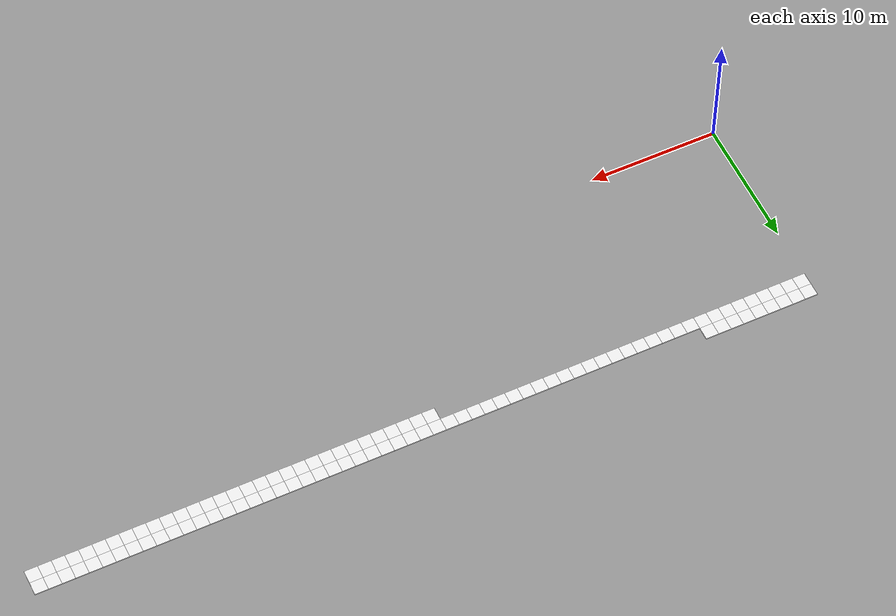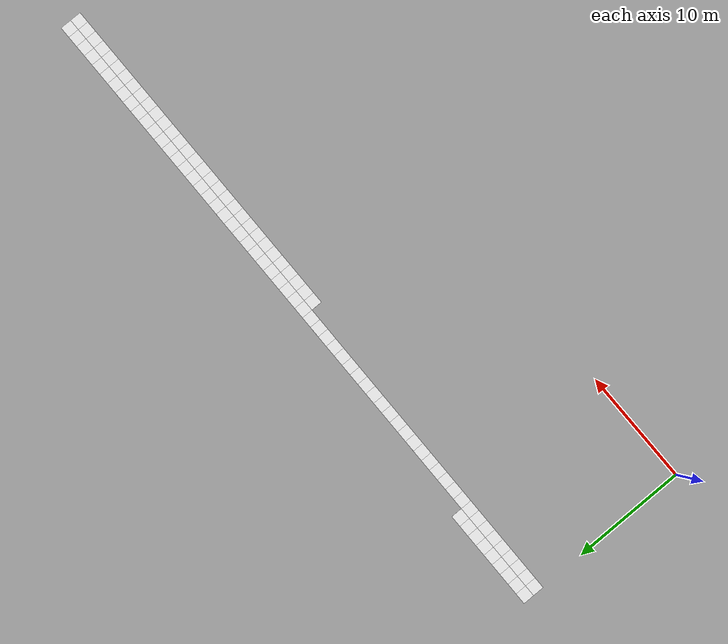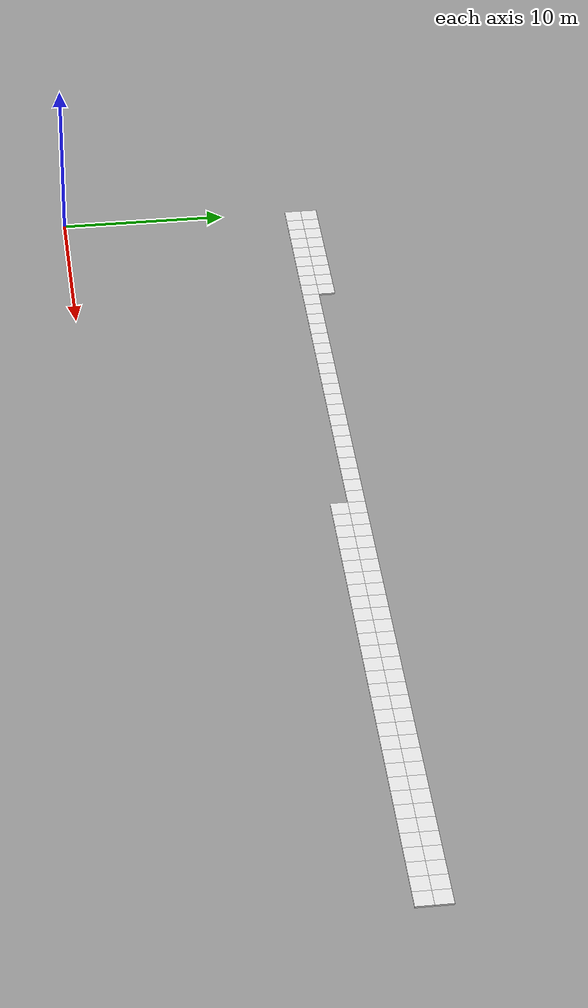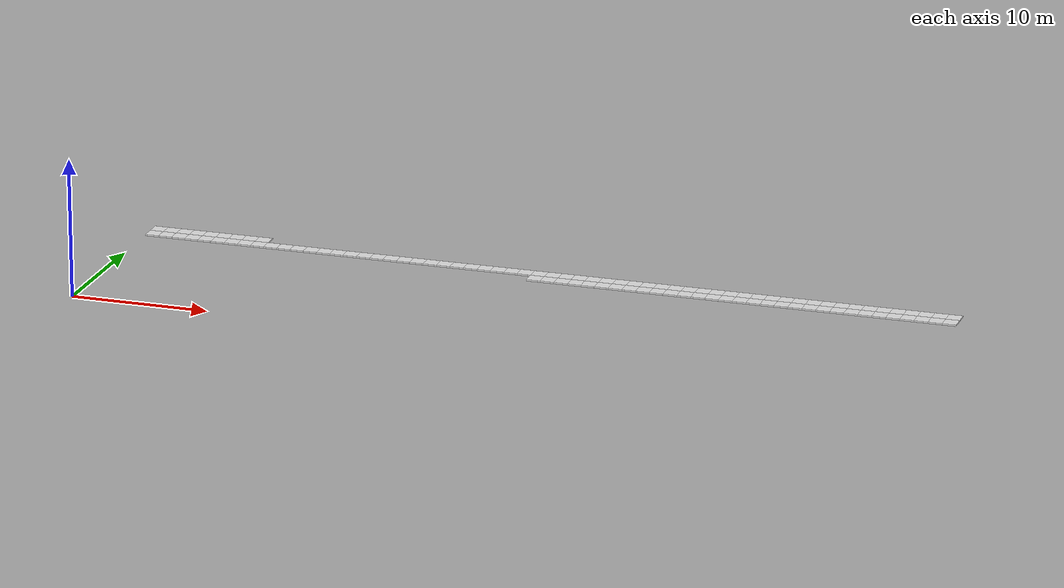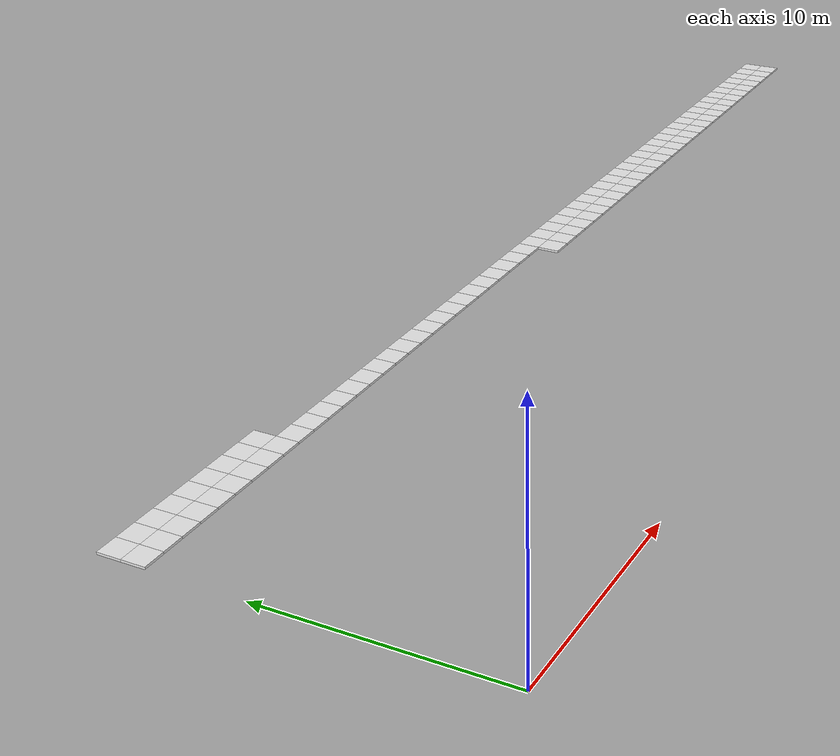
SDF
<sdf version="1.6">
 <world name="grid_world">
  <model name="cell_29_13">
   <static>true</static>
   <link name="link">
    <collision name="collision"><geometry><box><size>1 1 0.1</size></box></geometry></collision>
    <visual name="visual">
     <geometry><box><size>1 1 0.1</size></box></geometry>
     <material>
      <script><uri>file://media/materials/scripts/gazebo.material</uri><name>Gazebo/White</name></script>
     </material>
    </visual>
    <pose>29.5 13.5 0.05 0 0 0</pose>
   </link>
  </model>
  <model name="cell_30_13">
   <static>true</static>
   <link name="link">
    <collision name="collision"><geometry><box><size>1 1 0.1</size></box></geometry></collision>
    <visual name="visual">
     <geometry><box><size>1 1 0.1</size></box></geometry>
     <material>
      <script><uri>file://media/materials/scripts/gazebo.material</uri><name>Gazebo/White</name></script>
     </material>
    </visual>
    <pose>30.5 13.5 0.05 0 0 0</pose>
   </link>
  </model>
  <model name="cell_31_13">
   <static>true</static>
   <link name="link">
    <collision name="collision"><geometry><box><size>1 1 0.1</size></box></geometry></collision>
    <visual name="visual">
     <geometry><box><size>1 1 0.1</size></box></geometry>
     <material>
      <script><uri>file://media/materials/scripts/gazebo.material</uri><name>Gazebo/White</name></script>
     </material>
    </visual>
    <pose>31.5 13.5 0.05 0 0 0</pose>
   </link>
  </model>
  <model name="cell_32_13">
   <static>true</static>
   <link name="link">
    <collision name="collision"><geometry><box><size>1 1 0.1</size></box></geometry></collision>
    <visual name="visual">
     <geometry><box><size>1 1 0.1</size></box></geometry>
     <material>
      <script><uri>file://media/materials/scripts/gazebo.material</uri><name>Gazebo/White</name></script>
     </material>
    </visual>
    <pose>32.5 13.5 0.05 0 0 0</pose>
   </link>
  </model>
  <model name="cell_33_13">
   <static>true</static>
   <link name="link">
    <collision name="collision"><geometry><box><size>1 1 0.1</size></box></geometry></collision>
    <visual name="visual">
     <geometry><box><size>1 1 0.1</size></box></geometry>
     <material>
      <script><uri>file://media/materials/scripts/gazebo.material</uri><name>Gazebo/White</name></script>
     </material>
    </visual>
    <pose>33.5 13.5 0.05 0 0 0</pose>
   </link>
  </model>
  <model name="cell_34_13">
   <static>true</static>
   <link name="link">
    <collision name="collision"><geometry><box><size>1 1 0.1</size></box></geometry></collision>
    <visual name="visual">
     <geometry><box><size>1 1 0.1</size></box></geometry>
     <material>
      <script><uri>file://media/materials/scripts/gazebo.material</uri><name>Gazebo/White</name></script>
     </material>
    </visual>
    <pose>34.5 13.5 0.05 0 0 0</pose>
   </link>
  </model>
  <model name="cell_35_13">
   <static>true</static>
   <link name="link">
    <collision name="collision"><geometry><box><size>1 1 0.1</size></box></geometry></collision>
    <visual name="visual">
     <geometry><box><size>1 1 0.1</size></box></geometry>
     <material>
      <script><uri>file://media/materials/scripts/gazebo.material</uri><name>Gazebo/White</name></script>
     </material>
    </visual>
    <pose>35.5 13.5 0.05 0 0 0</pose>
   </link>
  </model>
  <model name="cell_36_13">
   <static>true</static>
   <link name="link">
    <collision name="collision"><geometry><box><size>1 1 0.1</size></box></geometry></collision>
    <visual name="visual">
     <geometry><box><size>1 1 0.1</size></box></geometry>
     <material>
      <script><uri>file://media/materials/scripts/gazebo.material</uri><name>Gazebo/White</name></script>
     </material>
    </visual>
    <pose>36.5 13.5 0.05 0 0 0</pose>
   </link>
  </model>
  <model name="cell_37_13">
   <static>true</static>
   <link name="link">
    <collision name="collision"><geometry><box><size>1 1 0.1</size></box></geometry></collision>
    <visual name="visual">
     <geometry><box><size>1 1 0.1</size></box></geometry>
     <material>
      <script><uri>file://media/materials/scripts/gazebo.material</uri><name>Gazebo/White</name></script>
     </material>
    </visual>
    <pose>37.5 13.5 0.05 0 0 0</pose>
   </link>
  </model>
  <model name="cell_38_13">
   <static>true</static>
   <link name="link">
    <collision name="collision"><geometry><box><size>1 1 0.1</size></box></geometry></collision>
    <visual name="visual">
     <geometry><box><size>1 1 0.1</size></box></geometry>
     <material>
      <script><uri>file://media/materials/scripts/gazebo.material</uri><name>Gazebo/White</name></script>
     </material>
    </visual>
    <pose>38.5 13.5 0.05 0 0 0</pose>
   </link>
  </model>
  <model name="cell_39_13">
   <static>true</static>
   <link name="link">
    <collision name="collision"><geometry><box><size>1 1 0.1</size></box></geometry></collision>
    <visual name="visual">
     <geometry><box><size>1 1 0.1</size></box></geometry>
     <material>
      <script><uri>file://media/materials/scripts/gazebo.material</uri><name>Gazebo/White</name></script>
     </material>
    </visual>
    <pose>39.5 13.5 0.05 0 0 0</pose>
   </link>
  </model>
  <model name="cell_40_13">
   <static>true</static>
   <link name="link">
    <collision name="collision"><geometry><box><size>1 1 0.1</size></box></geometry></collision>
    <visual name="visual">
     <geometry><box><size>1 1 0.1</size></box></geometry>
     <material>
      <script><uri>file://media/materials/scripts/gazebo.material</uri><name>Gazebo/White</name></script>
     </material>
    </visual>
    <pose>40.5 13.5 0.05 0 0 0</pose>
   </link>
  </model>
  <model name="cell_41_13">
   <static>true</static>
   <link name="link">
    <collision name="collision"><geometry><box><size>1 1 0.1</size></box></geometry></collision>
    <visual name="visual">
     <geometry><box><size>1 1 0.1</size></box></geometry>
     <material>
      <script><uri>file://media/materials/scripts/gazebo.material</uri><name>Gazebo/White</name></script>
     </material>
    </visual>
    <pose>41.5 13.5 0.05 0 0 0</pose>
   </link>
  </model>
  <model name="cell_42_13">
   <static>true</static>
   <link name="link">
    <collision name="collision"><geometry><box><size>1 1 0.1</size></box></geometry></collision>
    <visual name="visual">
     <geometry><box><size>1 1 0.1</size></box></geometry>
     <material>
      <script><uri>file://media/materials/scripts/gazebo.material</uri><name>Gazebo/White</name></script>
     </material>
    </visual>
    <pose>42.5 13.5 0.05 0 0 0</pose>
   </link>
  </model>
  <model name="cell_43_13">
   <static>true</static>
   <link name="link">
    <collision name="collision"><geometry><box><size>1 1 0.1</size></box></geometry></collision>
    <visual name="visual">
     <geometry><box><size>1 1 0.1</size></box></geometry>
     <material>
      <script><uri>file://media/materials/scripts/gazebo.material</uri><name>Gazebo/White</name></script>
     </material>
    </visual>
    <pose>43.5 13.5 0.05 0 0 0</pose>
   </link>
  </model>
  <model name="cell_44_13">
   <static>true</static>
   <link name="link">
    <collision name="collision"><geometry><box><size>1 1 0.1</size></box></geometry></collision>
    <visual name="visual">
     <geometry><box><size>1 1 0.1</size></box></geometry>
     <material>
      <script><uri>file://media/materials/scripts/gazebo.material</uri><name>Gazebo/White</name></script>
     </material>
    </visual>
    <pose>44.5 13.5 0.05 0 0 0</pose>
   </link>
  </model>
  <model name="cell_45_13">
   <static>true</static>
   <link name="link">
    <collision name="collision"><geometry><box><size>1 1 0.1</size></box></geometry></collision>
    <visual name="visual">
     <geometry><box><size>1 1 0.1</size></box></geometry>
     <material>
      <script><uri>file://media/materials/scripts/gazebo.material</uri><name>Gazebo/White</name></script>
     </material>
    </visual>
    <pose>45.5 13.5 0.05 0 0 0</pose>
   </link>
  </model>
  <model name="cell_46_13">
   <static>true</static>
   <link name="link">
    <collision name="collision"><geometry><box><size>1 1 0.1</size></box></geometry></collision>
    <visual name="visual">
     <geometry><box><size>1 1 0.1</size></box></geometry>
     <material>
      <script><uri>file://media/materials/scripts/gazebo.material</uri><name>Gazebo/White</name></script>
     </material>
    </visual>
    <pose>46.5 13.5 0.05 0 0 0</pose>
   </link>
  </model>
  <model name="cell_47_13">
   <static>true</static>
   <link name="link">
    <collision name="collision"><geometry><box><size>1 1 0.1</size></box></geometry></collision>
    <visual name="visual">
     <geometry><box><size>1 1 0.1</size></box></geometry>
     <material>
      <script><uri>file://media/materials/scripts/gazebo.material</uri><name>Gazebo/White</name></script>
     </material>
    </visual>
    <pose>47.5 13.5 0.05 0 0 0</pose>
   </link>
  </model>
  <model name="cell_48_13">
   <static>true</static>
   <link name="link">
    <collision name="collision"><geometry><box><size>1 1 0.1</size></box></geometry></collision>
    <visual name="visual">
     <geometry><box><size>1 1 0.1</size></box></geometry>
     <material>
      <script><uri>file://media/materials/scripts/gazebo.material</uri><name>Gazebo/White</name></script>
     </material>
    </visual>
    <pose>48.5 13.5 0.05 0 0 0</pose>
   </link>
  </model>
  <model name="cell_49_13">
   <static>true</static>
   <link name="link">
    <collision name="collision"><geometry><box><size>1 1 0.1</size></box></geometry></collision>
    <visual name="visual">
     <geometry><box><size>1 1 0.1</size></box></geometry>
     <material>
      <script><uri>file://media/materials/scripts/gazebo.material</uri><name>Gazebo/White</name></script>
     </material>
    </visual>
    <pose>49.5 13.5 0.05 0 0 0</pose>
   </link>
  </model>
  <model name="cell_50_13">
   <static>true</static>
   <link name="link">
    <collision name="collision"><geometry><box><size>1 1 0.1</size></box></geometry></collision>
    <visual name="visual">
     <geometry><box><size>1 1 0.1</size></box></geometry>
     <material>
      <script><uri>file://media/materials/scripts/gazebo.material</uri><name>Gazebo/White</name></script>
     </material>
    </visual>
    <pose>50.5 13.5 0.05 0 0 0</pose>
   </link>
  </model>
  <model name="cell_51_13">
   <static>true</static>
   <link name="link">
    <collision name="collision"><geometry><box><size>1 1 0.1</size></box></geometry></collision>
    <visual name="visual">
     <geometry><box><size>1 1 0.1</size></box></geometry>
     <material>
      <script><uri>file://media/materials/scripts/gazebo.material</uri><name>Gazebo/White</name></script>
     </material>
    </visual>
    <pose>51.5 13.5 0.05 0 0 0</pose>
   </link>
  </model>
  <model name="cell_52_13">
   <static>true</static>
   <link name="link">
    <collision name="collision"><geometry><box><size>1 1 0.1</size></box></geometry></collision>
    <visual name="visual">
     <geometry><box><size>1 1 0.1</size></box></geometry>
     <material>
      <script><uri>file://media/materials/scripts/gazebo.material</uri><name>Gazebo/White</name></script>
     </material>
    </visual>
    <pose>52.5 13.5 0.05 0 0 0</pose>
   </link>
  </model>
  <model name="cell_53_13">
   <static>true</static>
   <link name="link">
    <collision name="collision"><geometry><box><size>1 1 0.1</size></box></geometry></collision>
    <visual name="visual">
     <geometry><box><size>1 1 0.1</size></box></geometry>
     <material>
      <script><uri>file://media/materials/scripts/gazebo.material</uri><name>Gazebo/White</name></script>
     </material>
    </visual>
    <pose>53.5 13.5 0.05 0 0 0</pose>
   </link>
  </model>
  <model name="cell_54_13">
   <static>true</static>
   <link name="link">
    <collision name="collision"><geometry><box><size>1 1 0.1</size></box></geometry></collision>
    <visual name="visual">
     <geometry><box><size>1 1 0.1</size></box></geometry>
     <material>
      <script><uri>file://media/materials/scripts/gazebo.material</uri><name>Gazebo/White</name></script>
     </material>
    </visual>
    <pose>54.5 13.5 0.05 0 0 0</pose>
   </link>
  </model>
  <model name="cell_55_13">
   <static>true</static>
   <link name="link">
    <collision name="collision"><geometry><box><size>1 1 0.1</size></box></geometry></collision>
    <visual name="visual">
     <geometry><box><size>1 1 0.1</size></box></geometry>
     <material>
      <script><uri>file://media/materials/scripts/gazebo.material</uri><name>Gazebo/White</name></script>
     </material>
    </visual>
    <pose>55.5 13.5 0.05 0 0 0</pose>
   </link>
  </model>
  <model name="cell_56_13">
   <static>true</static>
   <link name="link">
    <collision name="collision"><geometry><box><size>1 1 0.1</size></box></geometry></collision>
    <visual name="visual">
     <geometry><box><size>1 1 0.1</size></box></geometry>
     <material>
      <script><uri>file://media/materials/scripts/gazebo.material</uri><name>Gazebo/White</name></script>
     </material>
    </visual>
    <pose>56.5 13.5 0.05 0 0 0</pose>
   </link>
  </model>
  <model name="cell_57_13">
   <static>true</static>
   <link name="link">
    <collision name="collision"><geometry><box><size>1 1 0.1</size></box></geometry></collision>
    <visual name="visual">
     <geometry><box><size>1 1 0.1</size></box></geometry>
     <material>
      <script><uri>file://media/materials/scripts/gazebo.material</uri><name>Gazebo/White</name></script>
     </material>
    </visual>
    <pose>57.5 13.5 0.05 0 0 0</pose>
   </link>
  </model>
  <model name="cell_58_13">
   <static>true</static>
   <link name="link">
    <collision name="collision"><geometry><box><size>1 1 0.1</size></box></geometry></collision>
    <visual name="visual">
     <geometry><box><size>1 1 0.1</size></box></geometry>
     <material>
      <script><uri>file://media/materials/scripts/gazebo.material</uri><name>Gazebo/White</name></script>
     </material>
    </visual>
    <pose>58.5 13.5 0.05 0 0 0</pose>
   </link>
  </model>
  <model name="cell_59_13">
   <static>true</static>
   <link name="link">
    <collision name="collision"><geometry><box><size>1 1 0.1</size></box></geometry></collision>
    <visual name="visual">
     <geometry><box><size>1 1 0.1</size></box></geometry>
     <material>
      <script><uri>file://media/materials/scripts/gazebo.material</uri><name>Gazebo/White</name></script>
     </material>
    </visual>
    <pose>59.5 13.5 0.05 0 0 0</pose>
   </link>
  </model>
  <model name="cell_0_14">
   <static>true</static>
   <link name="link">
    <collision name="collision"><geometry><box><size>1 1 0.1</size></box></geometry></collision>
    <visual name="visual">
     <geometry><box><size>1 1 0.1</size></box></geometry>
     <material>
      <script><uri>file://media/materials/scripts/gazebo.material</uri><name>Gazebo/White</name></script>
     </material>
    </visual>
    <pose>0.5 14.5 0.05 0 0 0</pose>
   </link>
  </model>
  <model name="cell_1_14">
   <static>true</static>
   <link name="link">
    <collision name="collision"><geometry><box><size>1 1 0.1</size></box></geometry></collision>
    <visual name="visual">
     <geometry><box><size>1 1 0.1</size></box></geometry>
     <material>
      <script><uri>file://media/materials/scripts/gazebo.material</uri><name>Gazebo/White</name></script>
     </material>
    </visual>
    <pose>1.5 14.5 0.05 0 0 0</pose>
   </link>
  </model>
  <model name="cell_2_14">
   <static>true</static>
   <link name="link">
    <collision name="collision"><geometry><box><size>1 1 0.1</size></box></geometry></collision>
    <visual name="visual">
     <geometry><box><size>1 1 0.1</size></box></geometry>
     <material>
      <script><uri>file://media/materials/scripts/gazebo.material</uri><name>Gazebo/White</name></script>
     </material>
    </visual>
    <pose>2.5 14.5 0.05 0 0 0</pose>
   </link>
  </model>
  <model name="cell_3_14">
   <static>true</static>
   <link name="link">
    <collision name="collision"><geometry><box><size>1 1 0.1</size></box></geometry></collision>
    <visual name="visual">
     <geometry><box><size>1 1 0.1</size></box></geometry>
     <material>
      <script><uri>file://media/materials/scripts/gazebo.material</uri><name>Gazebo/White</name></script>
     </material>
    </visual>
    <pose>3.5 14.5 0.05 0 0 0</pose>
   </link>
  </model>
  <model name="cell_4_14">
   <static>true</static>
   <link name="link">
    <collision name="collision"><geometry><box><size>1 1 0.1</size></box></geometry></collision>
    <visual name="visual">
     <geometry><box><size>1 1 0.1</size></box></geometry>
     <material>
      <script><uri>file://media/materials/scripts/gazebo.material</uri><name>Gazebo/White</name></script>
     </material>
    </visual>
    <pose>4.5 14.5 0.05 0 0 0</pose>
   </link>
  </model>
  <model name="cell_5_14">
   <static>true</static>
   <link name="link">
    <collision name="collision"><geometry><box><size>1 1 0.1</size></box></geometry></collision>
    <visual name="visual">
     <geometry><box><size>1 1 0.1</size></box></geometry>
     <material>
      <script><uri>file://media/materials/scripts/gazebo.material</uri><name>Gazebo/White</name></script>
     </material>
    </visual>
    <pose>5.5 14.5 0.05 0 0 0</pose>
   </link>
  </model>
  <model name="cell_6_14">
   <static>true</static>
   <link name="link">
    <collision name="collision"><geometry><box><size>1 1 0.1</size></box></geometry></collision>
    <visual name="visual">
     <geometry><box><size>1 1 0.1</size></box></geometry>
     <material>
      <script><uri>file://media/materials/scripts/gazebo.material</uri><name>Gazebo/White</name></script>
     </material>
    </visual>
    <pose>6.5 14.5 0.05 0 0 0</pose>
   </link>
  </model>
  <model name="cell_7_14">
   <static>true</static>
   <link name="link">
    <collision name="collision"><geometry><box><size>1 1 0.1</size></box></geometry></collision>
    <visual name="visual">
     <geometry><box><size>1 1 0.1</size></box></geometry>
     <material>
      <script><uri>file://media/materials/scripts/gazebo.material</uri><name>Gazebo/White</name></script>
     </material>
    </visual>
    <pose>7.5 14.5 0.05 0 0 0</pose>
   </link>
  </model>
  <model name="cell_8_14">
   <static>true</static>
   <link name="link">
    <collision name="collision"><geometry><box><size>1 1 0.1</size></box></geometry></collision>
    <visual name="visual">
     <geometry><box><size>1 1 0.1</size></box></geometry>
     <material>
      <script><uri>file://media/materials/scripts/gazebo.material</uri><name>Gazebo/White</name></script>
     </material>
    </visual>
    <pose>8.5 14.5 0.05 0 0 0</pose>
   </link>
  </model>
  <model name="cell_9_14">
   <static>true</static>
   <link name="link">
    <collision name="collision"><geometry><box><size>1 1 0.1</size></box></geometry></collision>
    <visual name="visual">
     <geometry><box><size>1 1 0.1</size></box></geometry>
     <material>
      <script><uri>file://media/materials/scripts/gazebo.material</uri><name>Gazebo/White</name></script>
     </material>
    </visual>
    <pose>9.5 14.5 0.05 0 0 0</pose>
   </link>
  </model>
  <model name="cell_10_14">
   <static>true</static>
   <link name="link">
    <collision name="collision"><geometry><box><size>1 1 0.1</size></box></geometry></collision>
    <visual name="visual">
     <geometry><box><size>1 1 0.1</size></box></geometry>
     <material>
      <script><uri>file://media/materials/scripts/gazebo.material</uri><name>Gazebo/White</name></script>
     </material>
    </visual>
    <pose>10.5 14.5 0.05 0 0 0</pose>
   </link>
  </model>
  <model name="cell_11_14">
   <static>true</static>
   <link name="link">
    <collision name="collision"><geometry><box><size>1 1 0.1</size></box></geometry></collision>
    <visual name="visual">
     <geometry><box><size>1 1 0.1</size></box></geometry>
     <material>
      <script><uri>file://media/materials/scripts/gazebo.material</uri><name>Gazebo/White</name></script>
     </material>
    </visual>
    <pose>11.5 14.5 0.05 0 0 0</pose>
   </link>
  </model>
  <model name="cell_12_14">
   <static>true</static>
   <link name="link">
    <collision name="collision"><geometry><box><size>1 1 0.1</size></box></geometry></collision>
    <visual name="visual">
     <geometry><box><size>1 1 0.1</size></box></geometry>
     <material>
      <script><uri>file://media/materials/scripts/gazebo.material</uri><name>Gazebo/White</name></script>
     </material>
    </visual>
    <pose>12.5 14.5 0.05 0 0 0</pose>
   </link>
  </model>
  <model name="cell_13_14">
   <static>true</static>
   <link name="link">
    <collision name="collision"><geometry><box><size>1 1 0.1</size></box></geometry></collision>
    <visual name="visual">
     <geometry><box><size>1 1 0.1</size></box></geometry>
     <material>
      <script><uri>file://media/materials/scripts/gazebo.material</uri><name>Gazebo/White</name></script>
     </material>
    </visual>
    <pose>13.5 14.5 0.05 0 0 0</pose>
   </link>
  </model>
  <model name="cell_14_14">
   <static>true</static>
   <link name="link">
    <collision name="collision"><geometry><box><size>1 1 0.1</size></box></geometry></collision>
    <visual name="visual">
     <geometry><box><size>1 1 0.1</size></box></geometry>
     <material>
      <script><uri>file://media/materials/scripts/gazebo.material</uri><name>Gazebo/White</name></script>
     </material>
    </visual>
    <pose>14.5 14.5 0.05 0 0 0</pose>
   </link>
  </model>
  <model name="cell_15_14">
   <static>true</static>
   <link name="link">
    <collision name="collision"><geometry><box><size>1 1 0.1</size></box></geometry></collision>
    <visual name="visual">
     <geometry><box><size>1 1 0.1</size></box></geometry>
     <material>
      <script><uri>file://media/materials/scripts/gazebo.material</uri><name>Gazebo/White</name></script>
     </material>
    </visual>
    <pose>15.5 14.5 0.05 0 0 0</pose>
   </link>
  </model>
  <model name="cell_16_14">
   <static>true</static>
   <link name="link">
    <collision name="collision"><geometry><box><size>1 1 0.1</size></box></geometry></collision>
    <visual name="visual">
     <geometry><box><size>1 1 0.1</size></box></geometry>
     <material>
      <script><uri>file://media/materials/scripts/gazebo.material</uri><name>Gazebo/White</name></script>
     </material>
    </visual>
    <pose>16.5 14.5 0.05 0 0 0</pose>
   </link>
  </model>
  <model name="cell_17_14">
   <static>true</static>
   <link name="link">
    <collision name="collision"><geometry><box><size>1 1 0.1</size></box></geometry></collision>
    <visual name="visual">
     <geometry><box><size>1 1 0.1</size></box></geometry>
     <material>
      <script><uri>file://media/materials/scripts/gazebo.material</uri><name>Gazebo/White</name></script>
     </material>
    </visual>
    <pose>17.5 14.5 0.05 0 0 0</pose>
   </link>
  </model>
  <model name="cell_18_14">
   <static>true</static>
   <link name="link">
    <collision name="collision"><geometry><box><size>1 1 0.1</size></box></geometry></collision>
    <visual name="visual">
     <geometry><box><size>1 1 0.1</size></box></geometry>
     <material>
      <script><uri>file://media/materials/scripts/gazebo.material</uri><name>Gazebo/White</name></script>
     </material>
    </visual>
    <pose>18.5 14.5 0.05 0 0 0</pose>
   </link>
  </model>
  <model name="cell_19_14">
   <static>true</static>
   <link name="link">
    <collision name="collision"><geometry><box><size>1 1 0.1</size></box></geometry></collision>
    <visual name="visual">
     <geometry><box><size>1 1 0.1</size></box></geometry>
     <material>
      <script><uri>file://media/materials/scripts/gazebo.material</uri><name>Gazebo/White</name></script>
     </material>
    </visual>
    <pose>19.5 14.5 0.05 0 0 0</pose>
   </link>
  </model>
  <model name="cell_20_14">
   <static>true</static>
   <link name="link">
    <collision name="collision"><geometry><box><size>1 1 0.1</size></box></geometry></collision>
    <visual name="visual">
     <geometry><box><size>1 1 0.1</size></box></geometry>
     <material>
      <script><uri>file://media/materials/scripts/gazebo.material</uri><name>Gazebo/White</name></script>
     </material>
    </visual>
    <pose>20.5 14.5 0.05 0 0 0</pose>
   </link>
  </model>
  <model name="cell_21_14">
   <static>true</static>
   <link name="link">
    <collision name="collision"><geometry><box><size>1 1 0.1</size></box></geometry></collision>
    <visual name="visual">
     <geometry><box><size>1 1 0.1</size></box></geometry>
     <material>
      <script><uri>file://media/materials/scripts/gazebo.material</uri><name>Gazebo/White</name></script>
     </material>
    </visual>
    <pose>21.5 14.5 0.05 0 0 0</pose>
   </link>
  </model>
  <model name="cell_22_14">
   <static>true</static>
   <link name="link">
    <collision name="collision"><geometry><box><size>1 1 0.1</size></box></geometry></collision>
    <visual name="visual">
     <geometry><box><size>1 1 0.1</size></box></geometry>
     <material>
      <script><uri>file://media/materials/scripts/gazebo.material</uri><name>Gazebo/White</name></script>
     </material>
    </visual>
    <pose>22.5 14.5 0.05 0 0 0</pose>
   </link>
  </model>
  <model name="cell_23_14">
   <static>true</static>
   <link name="link">
    <collision name="collision"><geometry><box><size>1 1 0.1</size></box></geometry></collision>
    <visual name="visual">
     <geometry><box><size>1 1 0.1</size></box></geometry>
     <material>
      <script><uri>file://media/materials/scripts/gazebo.material</uri><name>Gazebo/White</name></script>
     </material>
    </visual>
    <pose>23.5 14.5 0.05 0 0 0</pose>
   </link>
  </model>
  <model name="cell_24_14">
   <static>true</static>
   <link name="link">
    <collision name="collision"><geometry><box><size>1 1 0.1</size></box></geometry></collision>
    <visual name="visual">
     <geometry><box><size>1 1 0.1</size></box></geometry>
     <material>
      <script><uri>file://media/materials/scripts/gazebo.material</uri><name>Gazebo/White</name></script>
     </material>
    </visual>
    <pose>24.5 14.5 0.05 0 0 0</pose>
   </link>
  </model>
  <model name="cell_25_14">
   <static>true</static>
   <link name="link">
    <collision name="collision"><geometry><box><size>1 1 0.1</size></box></geometry></collision>
    <visual name="visual">
     <geometry><box><size>1 1 0.1</size></box></geometry>
     <material>
      <script><uri>file://media/materials/scripts/gazebo.material</uri><name>Gazebo/White</name></script>
     </material>
    </visual>
    <pose>25.5 14.5 0.05 0 0 0</pose>
   </link>
  </model>
  <model name="cell_26_14">
   <static>true</static>
   <link name="link">
    <collision name="collision"><geometry><box><size>1 1 0.1</size></box></geometry></collision>
    <visual name="visual">
     <geometry><box><size>1 1 0.1</size></box></geometry>
     <material>
      <script><uri>file://media/materials/scripts/gazebo.material</uri><name>Gazebo/White</name></script>
     </material>
    </visual>
    <pose>26.5 14.5 0.05 0 0 0</pose>
   </link>
  </model>
  <model name="cell_27_14">
   <static>true</static>
   <link name="link">
    <collision name="collision"><geometry><box><size>1 1 0.1</size></box></geometry></collision>
    <visual name="visual">
     <geometry><box><size>1 1 0.1</size></box></geometry>
     <material>
      <script><uri>file://media/materials/scripts/gazebo.material</uri><name>Gazebo/White</name></script>
     </material>
    </visual>
    <pose>27.5 14.5 0.05 0 0 0</pose>
   </link>
  </model>
  <model name="cell_28_14">
   <static>true</static>
   <link name="link">
    <collision name="collision"><geometry><box><size>1 1 0.1</size></box></geometry></collision>
    <visual name="visual">
     <geometry><box><size>1 1 0.1</size></box></geometry>
     <material>
      <script><uri>file://media/materials/scripts/gazebo.material</uri><name>Gazebo/White</name></script>
     </material>
    </visual>
    <pose>28.5 14.5 0.05 0 0 0</pose>
   </link>
  </model>
  <model name="cell_29_14">
   <static>true</static>
   <link name="link">
    <collision name="collision"><geometry><box><size>1 1 0.1</size></box></geometry></collision>
    <visual name="visual">
     <geometry><box><size>1 1 0.1</size></box></geometry>
     <material>
      <script><uri>file://media/materials/scripts/gazebo.material</uri><name>Gazebo/White</name></script>
     </material>
    </visual>
    <pose>29.5 14.5 0.05 0 0 0</pose>
   </link>
  </model>
  <model name="cell_30_14">
   <static>true</static>
   <link name="link">
    <collision name="collision"><geometry><box><size>1 1 0.1</size></box></geometry></collision>
    <visual name="visual">
     <geometry><box><size>1 1 0.1</size></box></geometry>
     <material>
      <script><uri>file://media/materials/scripts/gazebo.material</uri><name>Gazebo/White</name></script>
     </material>
    </visual>
    <pose>30.5 14.5 0.05 0 0 0</pose>
   </link>
  </model>
  <model name="cell_31_14">
   <static>true</static>
   <link name="link">
    <collision name="collision"><geometry><box><size>1 1 0.1</size></box></geometry></collision>
    <visual name="visual">
     <geometry><box><size>1 1 0.1</size></box></geometry>
     <material>
      <script><uri>file://media/materials/scripts/gazebo.material</uri><name>Gazebo/White</name></script>
     </material>
    </visual>
    <pose>31.5 14.5 0.05 0 0 0</pose>
   </link>
  </model>
  <model name="cell_32_14">
   <static>true</static>
   <link name="link">
    <collision name="collision"><geometry><box><size>1 1 0.1</size></box></geometry></collision>
    <visual name="visual">
     <geometry><box><size>1 1 0.1</size></box></geometry>
     <material>
      <script><uri>file://media/materials/scripts/gazebo.material</uri><name>Gazebo/White</name></script>
     </material>
    </visual>
    <pose>32.5 14.5 0.05 0 0 0</pose>
   </link>
  </model>
  <model name="cell_33_14">
   <static>true</static>
   <link name="link">
    <collision name="collision"><geometry><box><size>1 1 0.1</size></box></geometry></collision>
    <visual name="visual">
     <geometry><box><size>1 1 0.1</size></box></geometry>
     <material>
      <script><uri>file://media/materials/scripts/gazebo.material</uri><name>Gazebo/White</name></script>
     </material>
    </visual>
    <pose>33.5 14.5 0.05 0 0 0</pose>
   </link>
  </model>
  <model name="cell_34_14">
   <static>true</static>
   <link name="link">
    <collision name="collision"><geometry><box><size>1 1 0.1</size></box></geometry></collision>
    <visual name="visual">
     <geometry><box><size>1 1 0.1</size></box></geometry>
     <material>
      <script><uri>file://media/materials/scripts/gazebo.material</uri><name>Gazebo/White</name></script>
     </material>
    </visual>
    <pose>34.5 14.5 0.05 0 0 0</pose>
   </link>
  </model>
  <model name="cell_35_14">
   <static>true</static>
   <link name="link">
    <collision name="collision"><geometry><box><size>1 1 0.1</size></box></geometry></collision>
    <visual name="visual">
     <geometry><box><size>1 1 0.1</size></box></geometry>
     <material>
      <script><uri>file://media/materials/scripts/gazebo.material</uri><name>Gazebo/White</name></script>
     </material>
    </visual>
    <pose>35.5 14.5 0.05 0 0 0</pose>
   </link>
  </model>
  <model name="cell_36_14">
   <static>true</static>
   <link name="link">
    <collision name="collision"><geometry><box><size>1 1 0.1</size></box></geometry></collision>
    <visual name="visual">
     <geometry><box><size>1 1 0.1</size></box></geometry>
     <material>
      <script><uri>file://media/materials/scripts/gazebo.material</uri><name>Gazebo/White</name></script>
     </material>
    </visual>
    <pose>36.5 14.5 0.05 0 0 0</pose>
   </link>
  </model>
  <model name="cell_37_14">
   <static>true</static>
   <link name="link">
    <collision name="collision"><geometry><box><size>1 1 0.1</size></box></geometry></collision>
    <visual name="visual">
     <geometry><box><size>1 1 0.1</size></box></geometry>
     <material>
      <script><uri>file://media/materials/scripts/gazebo.material</uri><name>Gazebo/White</name></script>
     </material>
    </visual>
    <pose>37.5 14.5 0.05 0 0 0</pose>
   </link>
  </model>
  <model name="cell_38_14">
   <static>true</static>
   <link name="link">
    <collision name="collision"><geometry><box><size>1 1 0.1</size></box></geometry></collision>
    <visual name="visual">
     <geometry><box><size>1 1 0.1</size></box></geometry>
     <material>
      <script><uri>file://media/materials/scripts/gazebo.material</uri><name>Gazebo/White</name></script>
     </material>
    </visual>
    <pose>38.5 14.5 0.05 0 0 0</pose>
   </link>
  </model>
  <model name="cell_39_14">
   <static>true</static>
   <link name="link">
    <collision name="collision"><geometry><box><size>1 1 0.1</size></box></geometry></collision>
    <visual name="visual">
     <geometry><box><size>1 1 0.1</size></box></geometry>
     <material>
      <script><uri>file://media/materials/scripts/gazebo.material</uri><name>Gazebo/White</name></script>
     </material>
    </visual>
    <pose>39.5 14.5 0.05 0 0 0</pose>
   </link>
  </model>
  <model name="cell_40_14">
   <static>true</static>
   <link name="link">
    <collision name="collision"><geometry><box><size>1 1 0.1</size></box></geometry></collision>
    <visual name="visual">
     <geometry><box><size>1 1 0.1</size></box></geometry>
     <material>
      <script><uri>file://media/materials/scripts/gazebo.material</uri><name>Gazebo/White</name></script>
     </material>
    </visual>
    <pose>40.5 14.5 0.05 0 0 0</pose>
   </link>
  </model>
  <model name="cell_41_14">
   <static>true</static>
   <link name="link">
    <collision name="collision"><geometry><box><size>1 1 0.1</size></box></geometry></collision>
    <visual name="visual">
     <geometry><box><size>1 1 0.1</size></box></geometry>
     <material>
      <script><uri>file://media/materials/scripts/gazebo.material</uri><name>Gazebo/White</name></script>
     </material>
    </visual>
    <pose>41.5 14.5 0.05 0 0 0</pose>
   </link>
  </model>
  <model name="cell_42_14">
   <static>true</static>
   <link name="link">
    <collision name="collision"><geometry><box><size>1 1 0.1</size></box></geometry></collision>
    <visual name="visual">
     <geometry><box><size>1 1 0.1</size></box></geometry>
     <material>
      <script><uri>file://media/materials/scripts/gazebo.material</uri><name>Gazebo/White</name></script>
     </material>
    </visual>
    <pose>42.5 14.5 0.05 0 0 0</pose>
   </link>
  </model>
  <model name="cell_43_14">
   <static>true</static>
   <link name="link">
    <collision name="collision"><geometry><box><size>1 1 0.1</size></box></geometry></collision>
    <visual name="visual">
     <geometry><box><size>1 1 0.1</size></box></geometry>
     <material>
      <script><uri>file://media/materials/scripts/gazebo.material</uri><name>Gazebo/White</name></script>
     </material>
    </visual>
    <pose>43.5 14.5 0.05 0 0 0</pose>
   </link>
  </model>
  <model name="cell_44_14">
   <static>true</static>
   <link name="link">
    <collision name="collision"><geometry><box><size>1 1 0.1</size></box></geometry></collision>
    <visual name="visual">
     <geometry><box><size>1 1 0.1</size></box></geometry>
     <material>
      <script><uri>file://media/materials/scripts/gazebo.material</uri><name>Gazebo/White</name></script>
     </material>
    </visual>
    <pose>44.5 14.5 0.05 0 0 0</pose>
   </link>
  </model>
  <model name="cell_45_14">
   <static>true</static>
   <link name="link">
    <collision name="collision"><geometry><box><size>1 1 0.1</size></box></geometry></collision>
    <visual name="visual">
     <geometry><box><size>1 1 0.1</size></box></geometry>
     <material>
      <script><uri>file://media/materials/scripts/gazebo.material</uri><name>Gazebo/White</name></script>
     </material>
    </visual>
    <pose>45.5 14.5 0.05 0 0 0</pose>
   </link>
  </model>
  <model name="cell_46_14">
   <static>true</static>
   <link name="link">
    <collision name="collision"><geometry><box><size>1 1 0.1</size></box></geometry></collision>
    <visual name="visual">
     <geometry><box><size>1 1 0.1</size></box></geometry>
     <material>
      <script><uri>file://media/materials/scripts/gazebo.material</uri><name>Gazebo/White</name></script>
     </material>
    </visual>
    <pose>46.5 14.5 0.05 0 0 0</pose>
   </link>
  </model>
  <model name="cell_47_14">
   <static>true</static>
   <link name="link">
    <collision name="collision"><geometry><box><size>1 1 0.1</size></box></geometry></collision>
    <visual name="visual">
     <geometry><box><size>1 1 0.1</size></box></geometry>
     <material>
      <script><uri>file://media/materials/scripts/gazebo.material</uri><name>Gazebo/White</name></script>
     </material>
    </visual>
    <pose>47.5 14.5 0.05 0 0 0</pose>
   </link>
  </model>
  <model name="cell_48_14">
   <static>true</static>
   <link name="link">
    <collision name="collision"><geometry><box><size>1 1 0.1</size></box></geometry></collision>
    <visual name="visual">
     <geometry><box><size>1 1 0.1</size></box></geometry>
     <material>
      <script><uri>file://media/materials/scripts/gazebo.material</uri><name>Gazebo/White</name></script>
     </material>
    </visual>
    <pose>48.5 14.5 0.05 0 0 0</pose>
   </link>
  </model>
  <model name="cell_49_14">
   <static>true</static>
   <link name="link">
    <collision name="collision"><geometry><box><size>1 1 0.1</size></box></geometry></collision>
    <visual name="visual">
     <geometry><box><size>1 1 0.1</size></box></geometry>
     <material>
      <script><uri>file://media/materials/scripts/gazebo.material</uri><name>Gazebo/White</name></script>
     </material>
    </visual>
    <pose>49.5 14.5 0.05 0 0 0</pose>
   </link>
  </model>
  <model name="cell_50_14">
   <static>true</static>
   <link name="link">
    <collision name="collision"><geometry><box><size>1 1 0.1</size></box></geometry></collision>
    <visual name="visual">
     <geometry><box><size>1 1 0.1</size></box></geometry>
     <material>
      <script><uri>file://media/materials/scripts/gazebo.material</uri><name>Gazebo/White</name></script>
     </material>
    </visual>
    <pose>50.5 14.5 0.05 0 0 0</pose>
   </link>
  </model>
  <model name="cell_51_14">
   <static>true</static>
   <link name="link">
    <collision name="collision"><geometry><box><size>1 1 0.1</size></box></geometry></collision>
    <visual name="visual">
     <geometry><box><size>1 1 0.1</size></box></geometry>
     <material>
      <script><uri>file://media/materials/scripts/gazebo.material</uri><name>Gazebo/White</name></script>
     </material>
    </visual>
    <pose>51.5 14.5 0.05 0 0 0</pose>
   </link>
  </model>
  <model name="cell_52_14">
   <static>true</static>
   <link name="link">
    <collision name="collision"><geometry><box><size>1 1 0.1</size></box></geometry></collision>
    <visual name="visual">
     <geometry><box><size>1 1 0.1</size></box></geometry>
     <material>
      <script><uri>file://media/materials/scripts/gazebo.material</uri><name>Gazebo/White</name></script>
     </material>
    </visual>
    <pose>52.5 14.5 0.05 0 0 0</pose>
   </link>
  </model>
  <model name="cell_53_14">
   <static>true</static>
   <link name="link">
    <collision name="collision"><geometry><box><size>1 1 0.1</size></box></geometry></collision>
    <visual name="visual">
     <geometry><box><size>1 1 0.1</size></box></geometry>
     <material>
      <script><uri>file://media/materials/scripts/gazebo.material</uri><name>Gazebo/White</name></script>
     </material>
    </visual>
    <pose>53.5 14.5 0.05 0 0 0</pose>
   </link>
  </model>
  <model name="cell_54_14">
   <static>true</static>
   <link name="link">
    <collision name="collision"><geometry><box><size>1 1 0.1</size></box></geometry></collision>
    <visual name="visual">
     <geometry><box><size>1 1 0.1</size></box></geometry>
     <material>
      <script><uri>file://media/materials/scripts/gazebo.material</uri><name>Gazebo/White</name></script>
     </material>
    </visual>
    <pose>54.5 14.5 0.05 0 0 0</pose>
   </link>
  </model>
  <model name="cell_55_14">
   <static>true</static>
   <link name="link">
    <collision name="collision"><geometry><box><size>1 1 0.1</size></box></geometry></collision>
    <visual name="visual">
     <geometry><box><size>1 1 0.1</size></box></geometry>
     <material>
      <script><uri>file://media/materials/scripts/gazebo.material</uri><name>Gazebo/White</name></script>
     </material>
    </visual>
    <pose>55.5 14.5 0.05 0 0 0</pose>
   </link>
  </model>
  <model name="cell_56_14">
   <static>true</static>
   <link name="link">
    <collision name="collision"><geometry><box><size>1 1 0.1</size></box></geometry></collision>
    <visual name="visual">
     <geometry><box><size>1 1 0.1</size></box></geometry>
     <material>
      <script><uri>file://media/materials/scripts/gazebo.material</uri><name>Gazebo/White</name></script>
     </material>
    </visual>
    <pose>56.5 14.5 0.05 0 0 0</pose>
   </link>
  </model>
  <model name="cell_57_14">
   <static>true</static>
   <link name="link">
    <collision name="collision"><geometry><box><size>1 1 0.1</size></box></geometry></collision>
    <visual name="visual">
     <geometry><box><size>1 1 0.1</size></box></geometry>
     <material>
      <script><uri>file://media/materials/scripts/gazebo.material</uri><name>Gazebo/White</name></script>
     </material>
    </visual>
    <pose>57.5 14.5 0.05 0 0 0</pose>
   </link>
  </model>
  <model name="cell_58_14">
   <static>true</static>
   <link name="link">
    <collision name="collision"><geometry><box><size>1 1 0.1</size></box></geometry></collision>
    <visual name="visual">
     <geometry><box><size>1 1 0.1</size></box></geometry>
     <material>
      <script><uri>file://media/materials/scripts/gazebo.material</uri><name>Gazebo/White</name></script>
     </material>
    </visual>
    <pose>58.5 14.5 0.05 0 0 0</pose>
   </link>
  </model>
  <model name="cell_59_14">
   <static>true</static>
   <link name="link">
    <collision name="collision"><geometry><box><size>1 1 0.1</size></box></geometry></collision>
    <visual name="visual">
     <geometry><box><size>1 1 0.1</size></box></geometry>
     <material>
      <script><uri>file://media/materials/scripts/gazebo.material</uri><name>Gazebo/White</name></script>
     </material>
    </visual>
    <pose>59.5 14.5 0.05 0 0 0</pose>
   </link>
  </model>
  <model name="cell_0_15">
   <static>true</static>
   <link name="link">
    <collision name="collision"><geometry><box><size>1 1 0.1</size></box></geometry></collision>
    <visual name="visual">
     <geometry><box><size>1 1 0.1</size></box></geometry>
     <material>
      <script><uri>file://media/materials/scripts/gazebo.material</uri><name>Gazebo/White</name></script>
     </material>
    </visual>
    <pose>0.5 15.5 0.05 0 0 0</pose>
   </link>
  </model>
  <model name="cell_1_15">
   <static>true</static>
   <link name="link">
    <collision name="collision"><geometry><box><size>1 1 0.1</size></box></geometry></collision>
    <visual name="visual">
     <geometry><box><size>1 1 0.1</size></box></geometry>
     <material>
      <script><uri>file://media/materials/scripts/gazebo.material</uri><name>Gazebo/White</name></script>
     </material>
    </visual>
    <pose>1.5 15.5 0.05 0 0 0</pose>
   </link>
  </model>
  <model name="cell_2_15">
   <static>true</static>
   <link name="link">
    <collision name="collision"><geometry><box><size>1 1 0.1</size></box></geometry></collision>
    <visual name="visual">
     <geometry><box><size>1 1 0.1</size></box></geometry>
     <material>
      <script><uri>file://media/materials/scripts/gazebo.material</uri><name>Gazebo/White</name></script>
     </material>
    </visual>
    <pose>2.5 15.5 0.05 0 0 0</pose>
   </link>
  </model>
  <model name="cell_3_15">
   <static>true</static>
   <link name="link">
    <collision name="collision"><geometry><box><size>1 1 0.1</size></box></geometry></collision>
    <visual name="visual">
     <geometry><box><size>1 1 0.1</size></box></geometry>
     <material>
      <script><uri>file://media/materials/scripts/gazebo.material</uri><name>Gazebo/White</name></script>
     </material>
    </visual>
    <pose>3.5 15.5 0.05 0 0 0</pose>
   </link>
  </model>
  <model name="cell_4_15">
   <static>true</static>
   <link name="link">
    <collision name="collision"><geometry><box><size>1 1 0.1</size></box></geometry></collision>
    <visual name="visual">
     <geometry><box><size>1 1 0.1</size></box></geometry>
     <material>
      <script><uri>file://media/materials/scripts/gazebo.material</uri><name>Gazebo/White</name></script>
     </material>
    </visual>
    <pose>4.5 15.5 0.05 0 0 0</pose>
   </link>
  </model>
  <model name="cell_5_15">
   <static>true</static>
   <link name="link">
    <collision name="collision"><geometry><box><size>1 1 0.1</size></box></geometry></collision>
    <visual name="visual">
     <geometry><box><size>1 1 0.1</size></box></geometry>
     <material>
      <script><uri>file://media/materials/scripts/gazebo.material</uri><name>Gazebo/White</name></script>
     </material>
    </visual>
    <pose>5.5 15.5 0.05 0 0 0</pose>
   </link>
  </model>
  <model name="cell_6_15">
   <static>true</static>
   <link name="link">
    <collision name="collision"><geometry><box><size>1 1 0.1</size></box></geometry></collision>
    <visual name="visual">
     <geometry><box><size>1 1 0.1</size></box></geometry>
     <material>
      <script><uri>file://media/materials/scripts/gazebo.material</uri><name>Gazebo/White</name></script>
     </material>
    </visual>
    <pose>6.5 15.5 0.05 0 0 0</pose>
   </link>
  </model>
  <model name="cell_7_15">
   <static>true</static>
   <link name="link">
    <collision name="collision"><geometry><box><size>1 1 0.1</size></box></geometry></collision>
    <visual name="visual">
     <geometry><box><size>1 1 0.1</size></box></geometry>
     <material>
      <script><uri>file://media/materials/scripts/gazebo.material</uri><name>Gazebo/White</name></script>
     </material>
    </visual>
    <pose>7.5 15.5 0.05 0 0 0</pose>
   </link>
  </model>
  <model name="cell_8_15">
   <static>true</static>
   <link name="link">
    <collision name="collision"><geometry><box><size>1 1 0.1</size></box></geometry></collision>
    <visual name="visual">
     <geometry><box><size>1 1 0.1</size></box></geometry>
     <material>
      <script><uri>file://media/materials/scripts/gazebo.material</uri><name>Gazebo/White</name></script>
     </material>
    </visual>
    <pose>8.5 15.5 0.05 0 0 0</pose>
   </link>
  </model>
 </world>
</sdf>
